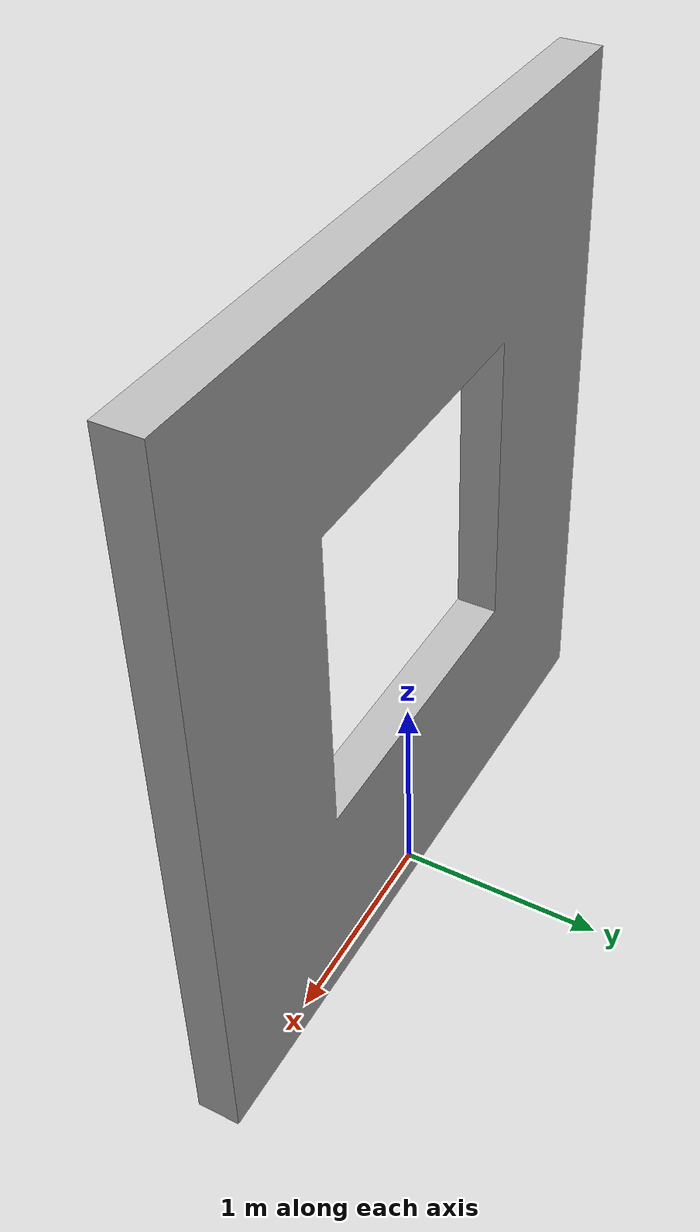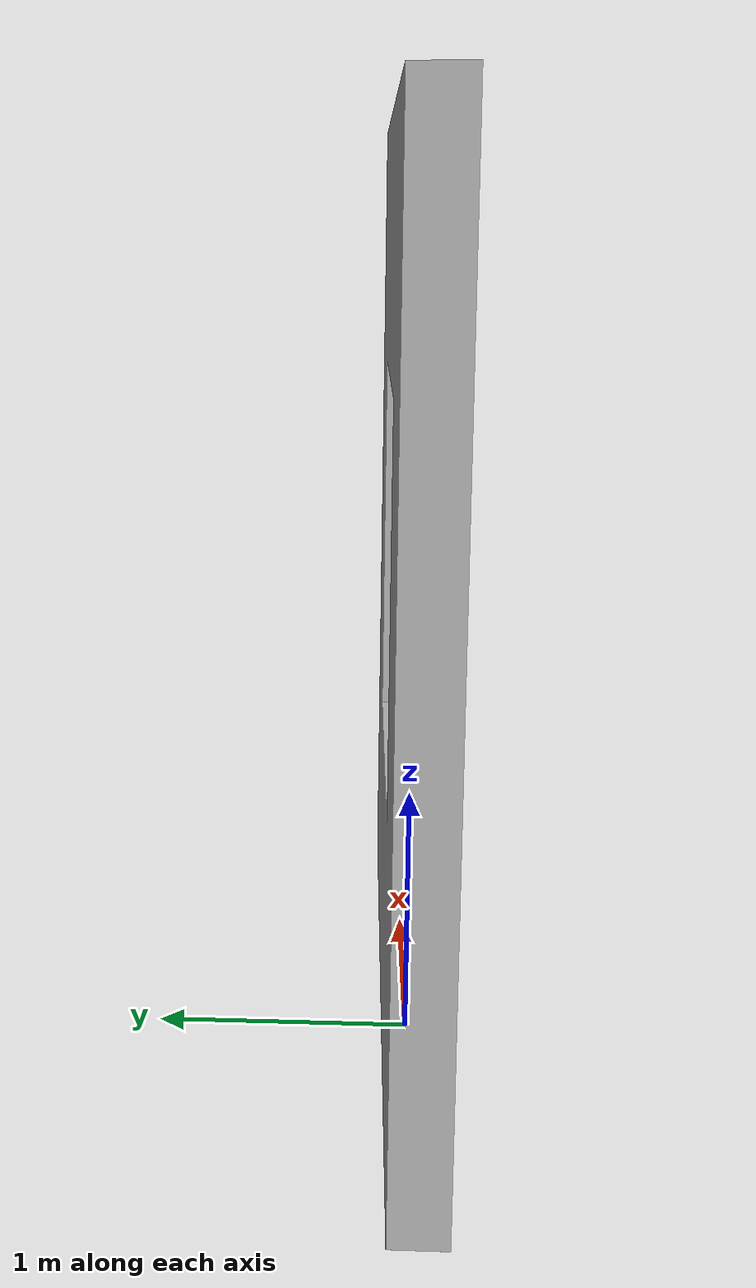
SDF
<?xml version="1.0"?>
<sdf version="1.5">
    <model name="house3_small">
        <static>true</static>
        <link name="link">
            <collision name="collision1">
                <pose>0 0 0 0 0 0</pose>
                <geometry>
                    <mesh>
                        <uri>model://house_scene_1_wall_w_window_small/meshes/scene_1_wall_w_window_small.dae</uri>
                    </mesh>
                </geometry>
            </collision>
            <visual name="visual_walls3">
              <pose>0 0 0 0 0 0</pose>
              <geometry>
              <mesh>
                 <uri>model://house_scene_1_wall_w_window_small/meshes/scene_1_wall_w_window_small.dae</uri>
              </mesh>
              </geometry>
              <material>
                  <script>
                      <uri>model://house_scene_1_wall_w_window_small/materials/scripts</uri>
                      <uri>model://house_scene_1_wall_w_window_small/materials/textures</uri>
                      <name>houseMat/Diffuse</name>
                  </script>
              </material>
             </visual>

        </link>
    </model>
</sdf>
